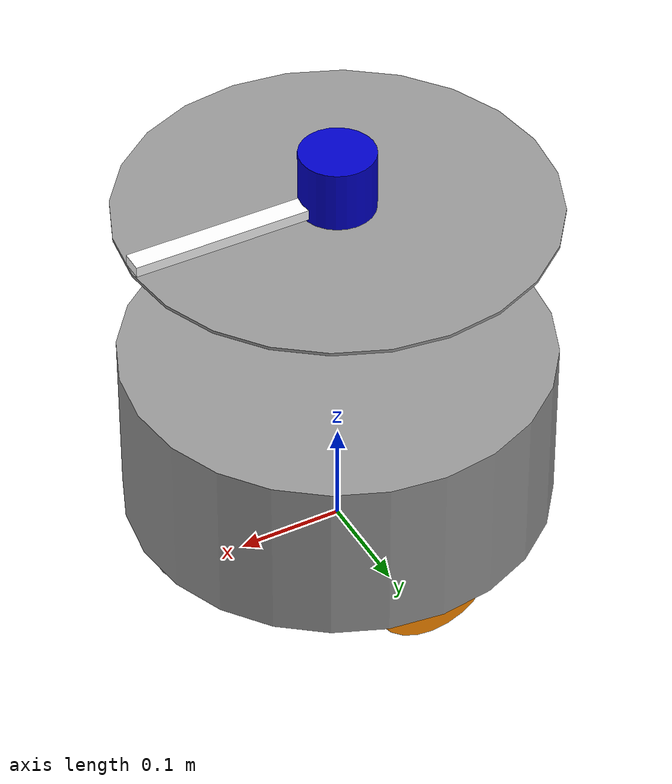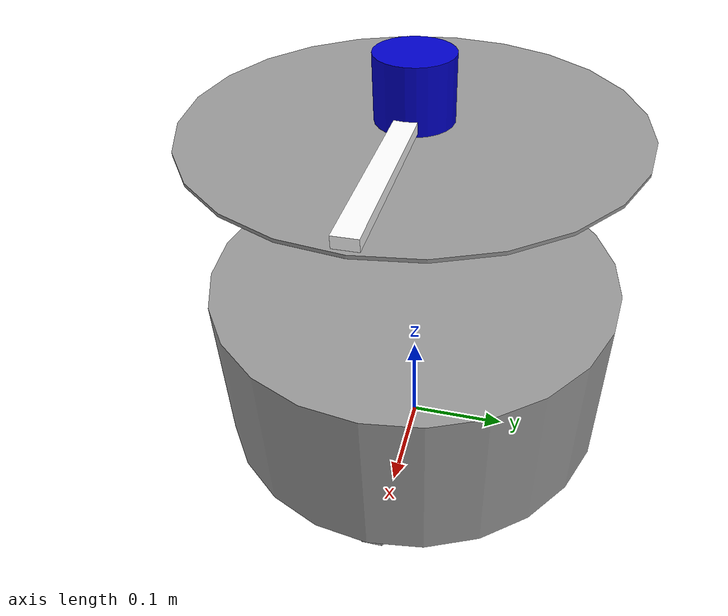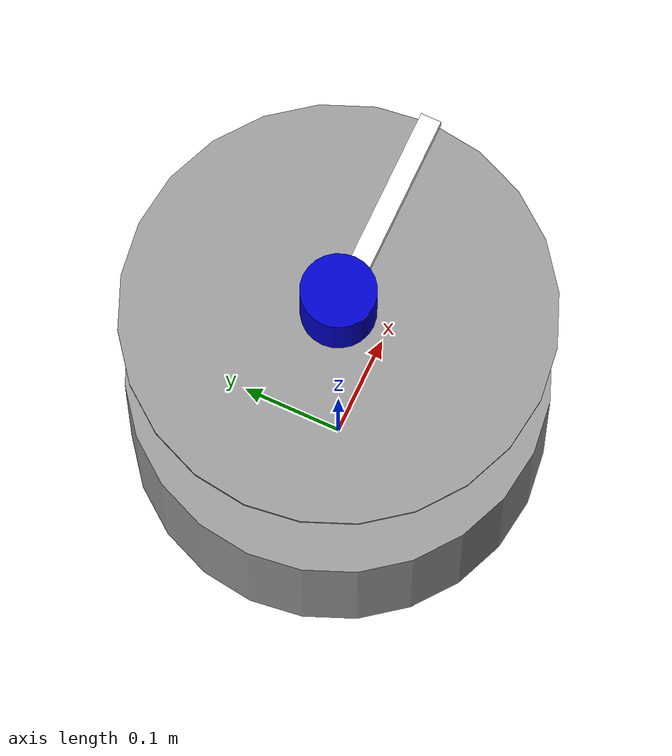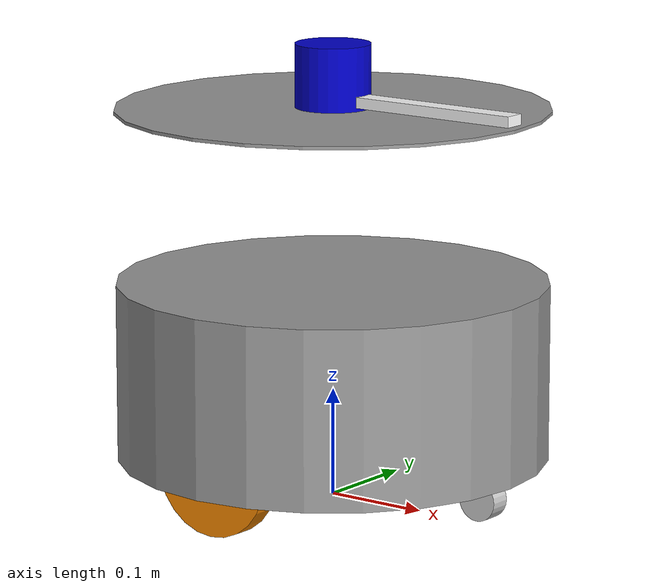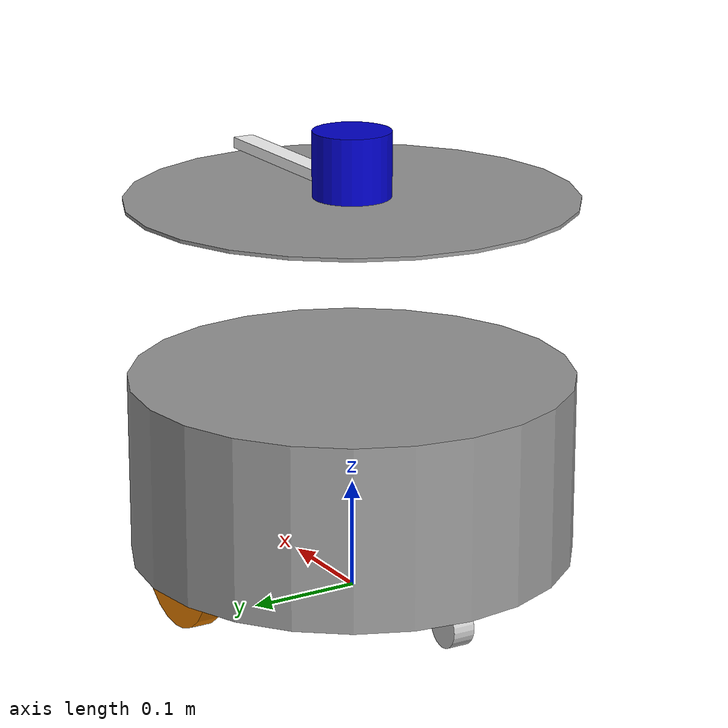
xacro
<?xml version="1.0"?>

<robot name="d1" xmlns:xacro="http://ros.org/wiki/xacro">

  <!-- Include all component files -->
  <xacro:include filename="$(find dashgo_description)/urdf/materials.urdf.xacro" />
  <xacro:include filename="$(find dashgo_description)/urdf/dashgo/base.urdf.xacro" />
  <xacro:include filename="$(find dashgo_description)/urdf/dashgo/wheel.urdf.xacro" />
  <xacro:include filename="$(find dashgo_description)/urdf/dashgo/passive_wheel.urdf.xacro" />
  <xacro:include filename="$(find dashgo_description)/urdf/dashgo/plate.urdf.xacro" />
  <xacro:include filename="$(find dashgo_description)/urdf/sensors/laser.urdf.xacro"/>
  <xacro:include filename="$(find dashgo_description)/urdf/sensors/imu.urdf.xacro"/>
  <xacro:include filename="$(find dashgo_description)/urdf/sensors/cliff.urdf.xacro"/>

  <!-- Define a number of dimensions using properties -->
  <xacro:property name="ground_gap" value="0.038" />
  <xacro:property name="base_length" value="0.165" />
  <xacro:property name="base_radius" value="0.20" />
  <xacro:property name="base_mass" value="5" />
  <xacro:property name="plate_height" value="0.16" />
  <xacro:property name="wheel_width" value="0.02" />
  <xacro:property name="wheel_radius" value="0.06" />
  <xacro:property name="wheel_separation" value="0.340" />
  <xacro:property name="passive_wheel_radius" value="0.019" />
  <xacro:property name="passive_wheel_offset_x" value="0.17" />
  <xacro:property name="passive_wheel_offset_z" value="${passive_wheel_radius-ground_gap+0.005}" />

  <!-- patrick_0802 define a base -->
  <link name="base_footprint">
      <visual>
        <origin xyz="0 0 0" rpy="0 0 0" />
        <geometry>
          <box size="0.05 0.05 0.001" />
        </geometry>
				<material name="light_grey">
				  <color rgba="0.6 0.6 0.6 1"/>
				</material>
      </visual>
  </link>

  <!-- Add the base and plates -->
  <base parent="base_footprint"
        length="${base_length}"
        radius="${base_radius}"
        offset_z="${ground_gap}"
        mass="${base_mass}"/>
  <wheel parent="base"
         lr="left"
         offset_x="0"
         offset_y="${wheel_separation/2}"
         offset_z="${wheel_radius - ground_gap}"
         width="${wheel_width}"
         radius="${wheel_radius}"/>
  <wheel parent="base"
         lr="right"
         offset_x="0"
         offset_y="${-wheel_separation/2}"
         offset_z="${wheel_radius - ground_gap}"
         width="${wheel_width}"
         radius="${wheel_radius}"/>
  <passive_wheel parent="base"
                 attr="front"
                 offset_x="${passive_wheel_offset_x}"
                 offset_y="0"
                 offset_z="${passive_wheel_offset_z}"
                 width="${wheel_width}"
                 radius="${passive_wheel_radius}"/>
  <passive_wheel parent="base"
                 attr="rear"
                 offset_x="${-passive_wheel_offset_x}"
                 offset_y="0"
                 offset_z="${passive_wheel_offset_z}"
                 width="${wheel_width}"
                 radius="${passive_wheel_radius}"/>
  <plate parent="base"
         name="plate"
         radius="${base_radius}"
         offset_x="0"
         offset_y="0"
         offset_z="${base_length+plate_height}"
         mass="0.5"/>

  <!-- Add the flag -->
  <joint name="front_point_flag" type="fixed">
    <origin xyz="${base_radius/2} 0 0.01" rpy="0 0 0" />
    <parent link="plate_link"/>
    <child link="front_flag" />
  </joint>
  <link name="front_flag">
      <visual>
        <origin xyz="0 0 0" rpy="0 0 0" />
        <geometry>
          <box size="${base_radius} 0.02 0.01" />
        </geometry>
				<xacro:insert_block name="material_white"/>
      </visual>
  </link>
  <gazebo reference="front_flag">
    <material>Gazebo/White</material>
  </gazebo>
	<!-- dashgo Gazebo simulation elements -->
	<hokuyo_laser parent="plate"/>
	<imu_sensor parent="base"/>
  <!-- using the dashgo gazebo_plugins -->
  <gazebo>
    <plugin name="dashgo_controller" filename="libgazebo_ros_dashgo.so">
      <publish_tf>1</publish_tf>
      <left_wheel_joint_name>wheel_left_joint</left_wheel_joint_name>
      <right_wheel_joint_name>wheel_right_joint</right_wheel_joint_name>
      <wheel_separation>${wheel_separation}</wheel_separation>
      <wheel_diameter>${wheel_radius*2}</wheel_diameter>
      <torque>6.0</torque>
      <velocity_command_timeout>0.6</velocity_command_timeout>
      <imu_name>imu</imu_name>
    </plugin>
  </gazebo>
</robot>

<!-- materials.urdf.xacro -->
<robot name="materials" xmlns:xacro="http://ros.org/wiki/xacro">

  <xacro:property name="PI" value="3.1415926535897931" />

  <xacro:property name="material_white">
    <material name="White">
      <color rgba="1 1 1 1"/>
    </material>
  </xacro:property>
  <xacro:property name="material_off_white">
    <material name="OffWhite">
      <color rgba="0.8 0.8 0.8 1.0"/>
    </material>
  </xacro:property>
  <xacro:property name="material_grey">
    <material name="Grey">
      <color rgba="0.7 0.7 0.7 1"/>
    </material>
  </xacro:property>
  <xacro:property name="material_light_grey">
    <material name="light_grey">
      <color rgba="0.6 0.6 0.6 1"/>
    </material>
  </xacro:property>
  <xacro:property name="material_dark_grey">
    <material name="DarkGrey">
      <color rgba="0.3 0.3 0.3 1"/>
    </material>
  </xacro:property>
  <xacro:property name="material_black">
    <material name="Black">
    	<color rgba="0.2 0.2 0.2 1.0"/>
    </material>
  </xacro:property>
  <xacro:property name="material_transparent_black">
    <material name="TransparentBlack">
    	<color rgba="0.2 0.2 0.2 0.8"/>
    </material>
  </xacro:property>
  <xacro:property name="material_red">
    <material name="Red">
      <color rgba="0.8 0 0 1"/>
    </material>
  </xacro:property>
  <xacro:property name="material_green">
    <material name="Green">
      <color rgba="0.0 0.8 0.0 1"/>
    </material>
  </xacro:property>
  <xacro:property name="material_transparent_green">
    <material name="TransparentGreen">
      <color rgba="0.0 0.8 0.0 0.5"/>
    </material>
  </xacro:property>
  <xacro:property name="material_blue">
    <material name="Blue">
      <color rgba="0.0 0.0 0.8 1"/>
    </material>
  </xacro:property>
  <xacro:property name="material_grey_blue">
    <material name="grey_blue">
      <color rgba="0.4 0.4 1.0 1"/>
    </material>
  </xacro:property>
  <xacro:property name="material_orange">
    <material name="Orange">
      <color rgba="1.0 0.55 0.0 1"/>
    </material>
  </xacro:property>
</robot>

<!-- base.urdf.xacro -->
<robot name="base" xmlns:xacro="http://ros.org/wiki/xacro">
  <!-- patrick_0803 define a base -->
  <xacro:macro name="base" params="parent length radius offset_z mass">
    <!-- joint -->
	  <joint name="base_joint" type="fixed">
			<origin xyz="0 0 ${offset_z}" rpy="0 0 0"/>
			<parent link="${parent}"/>
			<child link="base_link"/>
	  </joint>
	  <!-- link -->
	  <link name="base_link">
			<visual>
				<geometry>
		      <cylinder length="${length}" radius="${radius}"/>
				</geometry>
				<origin xyz="0 0 ${length/2}" rpy="0 0 0"/>
				<xacro:insert_block name="material_light_grey"/>
			</visual>
			<collision name="base_link">
				<geometry>
				  <cylinder length="${length}" radius="${radius}"/>
				</geometry>
				<origin xyz="0 0 ${length/2}" rpy="0 0 0"/>
			</collision>
			<inertial>
				<!-- COM experimentally determined -->
				<origin xyz="-0.01 0 0"/>
				<mass value="${mass}"/>
				<!-- 2.4/2.6 kg for small/big battery pack -->
				<inertia ixx="${mass/12*(3*radius*radius+length*length)}" ixy="0.0" ixz="0.0"
				         iyy="${mass/12*(3*radius*radius+length*length)}" iyz="0.0"
				         izz="${mass/2*radius*radius}"/>
			</inertial>
	  </link>

	  <!-- gazebo parameters -->
	  <gazebo reference="base_link">
	    <material>Gazebo/Black</material>
	  </gazebo>
  </xacro:macro>
</robot>

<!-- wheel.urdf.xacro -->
<robot name="wheel" xmlns:xacro="http://ros.org/wiki/xacro">
  <!-- patrick_0803 define a wheel -->
  <xacro:macro name="wheel" params="parent lr offset_x offset_y offset_z width radius">
    <!-- joint -->
    <joint name="wheel_${lr}_joint" type="continuous">
      <parent link="${parent}_link"/>
      <child link="wheel_${lr}_link"/>
      <origin xyz="${offset_x} ${offset_y} ${offset_z}"
              rpy="${-PI/2} 0 0"/>
      <axis xyz="0 0 1"/>
    </joint>
    <!-- link -->
    <link name="wheel_${lr}_link">
      <visual>
        <geometry>
          <cylinder length="${width}" radius="${radius}"/>
        </geometry>
        <xacro:insert_block name="material_orange"/>
        <origin xyz="0 0 0" rpy="0 0 0"/>
      </visual>
      <collision>
        <geometry>
          <cylinder length="${width}" radius="${radius}"/>
        </geometry>
        <origin xyz="0 0 0" rpy="0 0 0"/>
      </collision>
      <inertial>
        <origin xyz="0 0 0" />
        <mass value="0.01" />
        <inertia ixx="0.01" ixy="0.0" ixz="0.0"
                 iyy="0.01" iyz="0.0"
                 izz="0.01" />
      </inertial>
    </link>
    <!-- gazebo parameters -->
	  <gazebo reference="wheel_${lr}_link">
	    <mu1>1.0</mu1>
	    <mu2>1.0</mu2>
      <kp>10000000.0</kp>
	    <kd>1000.0</kd>
	    <minDepth>0.001</minDepth>
	    <maxVel>1.0</maxVel>
	    <material>Gazebo/Orange</material>
	  </gazebo>
  </xacro:macro>
</robot>

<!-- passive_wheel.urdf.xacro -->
<robot name="passive_wheel" xmlns:xacro="http://ros.org/wiki/xacro">
  <!-- patrick_0803 define a passive wheel -->
  <xacro:macro name="passive_wheel" params="parent attr offset_x offset_y offset_z width radius">
    <!-- joint -->
    <joint name="passive_wheel_${attr}_joint" type="fixed">
      <parent link="${parent}_link"/>
      <child link="passive_wheel_${attr}_link"/>
      <origin xyz="${offset_x} ${offset_y} ${offset_z}"
              rpy="${-PI/2} 0 0"/>
      <axis xyz="0 0 1"/>
    </joint>
    <!-- link -->
    <link name="passive_wheel_${attr}_link">
      <visual>
        <geometry>
          <cylinder length="${width}" radius="${radius}"/>
        </geometry>
        <xacro:insert_block name="material_off_white"/>
        <origin xyz="0 0 0" rpy="0 0 0"/>
      </visual>
      <collision>
        <geometry>
          <cylinder length="${width}" radius="${radius}"/>
        </geometry>
        <origin xyz="0 0 0" rpy="0 0 0"/>
      </collision>
       <inertial>
        <mass value="0.01" />
        <origin xyz="0 0 0" />
        <inertia ixx="0.01" ixy="0.0" ixz="0.0"
                 iyy="0.01" iyz="0.0"
                 izz="0.01" />
      </inertial>
    </link>
    <!-- gazebo parameters -->
	  <gazebo reference="passive_wheel_${attr}_link">
	    <mu1>0.1</mu1>
	    <mu2>0.1</mu2>
	    <material>Gazebo/Blue</material>
	  </gazebo>
  </xacro:macro>
</robot>

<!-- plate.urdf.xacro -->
<robot name="plate" xmlns:xacro="http://ros.org/wiki/xacro">
  <xacro:property name="length" value="0.003" />
  <!-- patrick_0803 define a plate -->
  <xacro:macro name="plate" params="parent name radius offset_x offset_y offset_z mass">
    <!-- joint -->
	  <joint name="${name}_joint" type="fixed">
			<origin xyz="${offset_x} ${offset_y} ${offset_z}"
			        rpy="0 0 0"/>
			<parent link="${parent}_link"/>
			<child link="${name}_link"/>
	  </joint>
    <!-- link -->
	  <link name="${name}_link">
			<visual>
				<geometry>
		      <cylinder length="${length}" radius="${radius}"/>
				</geometry>
				<origin rpy="0 0 0" xyz="0 0 0"/>
				<xacro:insert_block name="material_light_grey"/>
			</visual>
			<collision name="${name}_link">
				<geometry>
				  <cylinder length="${length}" radius="${radius}"/>
				</geometry>
				<origin rpy="0 0 0" xyz="0 0 0"/>
			</collision>
			<inertial>
				<!-- COM experimentally determined -->
				<origin xyz="0 0 0"/>
				<mass value="${mass}"/>
				<!-- 2.4/2.6 kg for small/big battery pack -->
				<inertia ixx="${mass/12*(3*radius*radius+length*length)}" ixy="0.0" ixz="0.0"
				         iyy="${mass/12*(3*radius*radius+length*length)}" iyz="0.0"
				         izz="${mass/2*radius*radius}"/>
			</inertial>
	  </link>

	  <!-- gazebo parameters -->
	  <gazebo reference="${name}_link">
	    <material>Gazebo/Black</material>
	  </gazebo>
  </xacro:macro>
</robot>

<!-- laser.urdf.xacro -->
<robot name="hokuyo_laser" xmlns:xacro="http://ros.org/wiki/xacro">
  <xacro:include filename="$(find dashgo_description)/urdf/materials.urdf.xacro" />
  <xacro:macro name="hokuyo_laser" params="parent">
    <!-- add laser sensor body -->
    <joint name="hokuyo_joint" type="fixed">
      <axis xyz="0 0 1" />
      <origin xyz="0 0 0.03" rpy="0 0 0"/>
      <parent link="${parent}_link"/>
      <child link="hokuyo_link"/>
    </joint>
    <link name="hokuyo_link">
      <visual>
        <origin xyz="0 0 0" rpy="0 0 0"/>
        <geometry>
          <cylinder length="0.06" radius="0.035"/>
        </geometry>
        <xacro:insert_block name="material_blue"/>
      </visual>
      <collision>
        <origin xyz="0 0 0" rpy="0 0 0"/>
        <geometry>
          <cylinder length="0.06" radius="0.035"/>
        </geometry>
      </collision>
      <inertial>
        <mass value="0.3" />
        <origin xyz="0 0 0" rpy="0 0 0"/>
        <inertia ixx="3.6e-4" ixy="0" ixz="0" iyy="3.6e-4" iyz="0" izz="1.8e-4" />
      </inertial>
    </link>
    <!-- add laser sensor -->
    <joint name="laser_joint" type="fixed">
      <axis xyz="0 0 1" />
      <origin xyz="0 0 0.015" rpy="0 0 0"/>
      <parent link="hokuyo_link"/>
      <child link="laser_link"/>
    </joint>
    <link name="laser_link">
      <inertial>
        <mass value="1e-5" />
        <origin xyz="0 0 0" rpy="0 0 0"/>
        <inertia ixx="1e-6" ixy="0" ixz="0" iyy="1e-6" iyz="0" izz="1e-6" />
      </inertial>
    </link>
    <!-- fake laser for simulation -->
    <gazebo reference="laser_link">
      <sensor type="ray" name="sensor">
        <pose>0 0 0 0 0 0</pose>
        <visualize>false</visualize>
        <update_rate>8</update_rate>
        <ray>
          <scan>
            <horizontal>
              <samples>500</samples>
              <resolution>1</resolution>
              <min_angle>${-PI}</min_angle>
              <max_angle>${PI}</max_angle>
            </horizontal>
          </scan>
          <range>
            <min>0.08</min>
            <max>12.0</max>
            <resolution>0.01</resolution>
          </range>
        </ray>
        <plugin name="laser" filename="libgazebo_ros_laser.so">
          <topicName>/scan</topicName>
          <frameName>laser_link</frameName>
        </plugin>
      </sensor>
    </gazebo>
  </xacro:macro>
</robot>

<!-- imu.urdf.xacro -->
<robot name="imu_sensor" xmlns:xacro="http://ros.org/wiki/xacro">
  <xacro:include filename="$(find dashgo_description)/urdf/materials.urdf.xacro" />
  <xacro:macro name="imu_sensor" params="parent">
    <!-- add imu -->
    <joint name="imu_joint" type="fixed">
      <axis xyz="0 1 0"/>
      <origin xyz="0.056 0.062 0.0202" rpy="0 0 0"/>
      <parent link="${parent}_link"/>
      <child link="imu_link"/>
    </joint>
    <link name="imu_link">
      <inertial>
        <mass value="0.001"/>
        <origin xyz="0 0 0" rpy="0 0 0"/>
        <inertia ixx="0.0001" ixy="0" ixz="0"
                 iyy="0.000001" iyz="0"
                 izz="0.0001"/>
      </inertial>
    </link>
    <!-- fake imu for simulation -->
    <gazebo reference="imu_link">
      <sensor type="imu" name="imu">
        <always_on>true</always_on>
        <update_rate>50</update_rate>
        <visualize>false</visualize>
        <imu>
          <noise>
            <type>gaussian</type>
            <rate>
              <mean>0.0</mean>
              <stddev>${0.0014*0.0014}</stddev> <!-- 0.25 x 0.25 (deg/s) -->
              <bias_mean>0.0</bias_mean>
              <bias_stddev>0.0</bias_stddev>
            </rate>
            <accel> <!-- not used in the plugin and real robot, hence using tutorial values -->
              <mean>0.0</mean>
              <stddev>1.7e-2</stddev>
              <bias_mean>0.1</bias_mean>
              <bias_stddev>0.001</bias_stddev>
            </accel>
          </noise>
        </imu>
      </sensor>
    </gazebo>
  </xacro:macro>
</robot>
